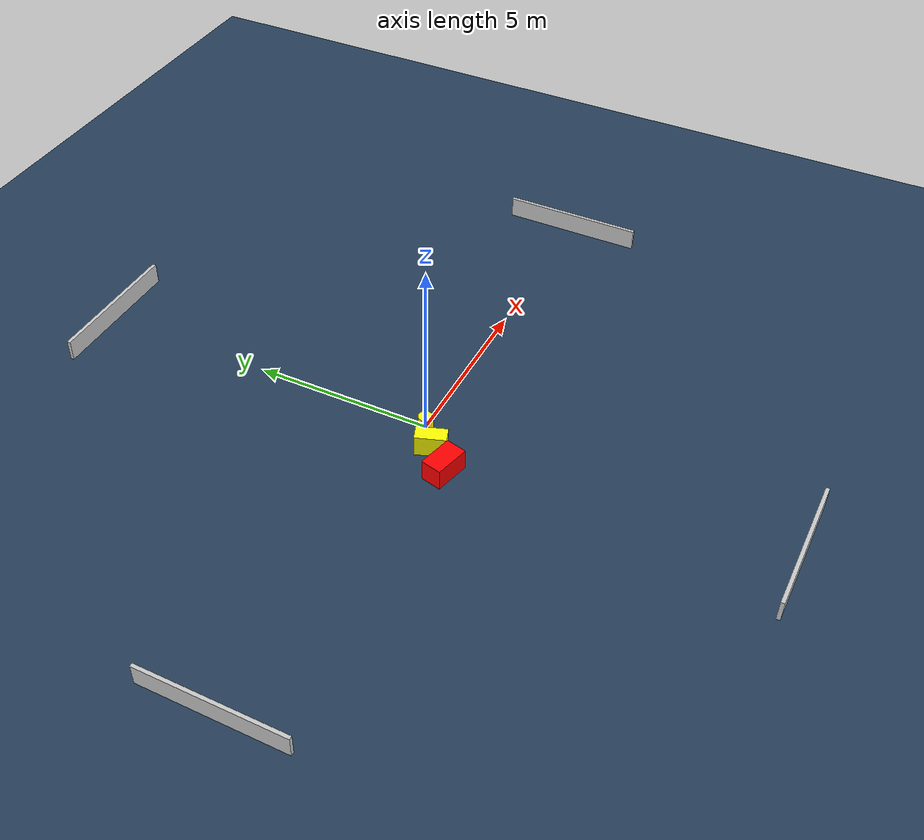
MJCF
<?xml version="1.0" ?>
<mujoco model="generated_environment">
  <option timestep="0.01" integrator="RK4" cone="elliptic"/>
  <default>
    <geom density="1"/>
  </default>
  <asset>
    <texture builtin="gradient" height="3072" name="skybox" rgb1="0.3 0.5 0.7" rgb2="0 0 0" type="skybox" width="512"/>
    <texture builtin="checker" height="300" name="groundplane" rgb1="0.2 0.3 0.4" rgb2="0.1 0.2 0.3" type="2d" width="300"/>
    <material name="groundplane" reflectance="0.2" texrepeat="5 5" texture="groundplane"/>
  </asset>
  <worldbody>
    <light dir="0 0 -1" directional="true" pos="0 0 1.5"/>
    <geom condim="3" friction="0.5 0.005 0.001" material="groundplane" name="floor" pos="0 0 0" size="0 0 0.05" type="plane"/>
    <body name="walls">
      <geom name="wall_1" condim="4" pos="-10.0 0.0 0.3" rgba="0.800000011920929 0.800000011920929 0.800000011920929 1.0" size="0.05 2.0 0.3" type="box"/>
      <geom name="wall_2" condim="4" pos="10.0 0.0 0.3" rgba="0.800000011920929 0.800000011920929 0.800000011920929 1.0" size="0.05 2.0 0.3" type="box"/>
      <geom name="wall_3" condim="4" pos="0.0 -10.0 0.3" rgba="0.800000011920929 0.800000011920929 0.800000011920929 1.0" size="2.0 0.05 0.3" type="box"/>
      <geom name="wall_4" condim="4" pos="0.0 10.0 0.3" rgba="0.800000011920929 0.800000011920929 0.800000011920929 1.0" size="2.0 0.05 0.3" type="box"/>
    </body>
    <body name="robot">
      <joint name="joint_x" type="slide" pos="0 0 0" axis="1 0 0"/>
      <joint name="joint_y" type="slide" pos="0 0 0" axis="0 1 0"/>
      <geom name="robot" type="cylinder" pos="0.0 0.0 0.2" size="0.2 0.2 0.0" mass="5.0" friction="1.0 0.005 0.0001" condim="4" rgba="1.0 1.0 0.0 1.0"/>
    </body>
    <body name="obstacle_1_movable">
      <geom name="obstacle_1_movable" condim="4" pos="-0.6913772678004224 -0.5073645262862921 0.3" euler="0 0 109.7140929666595" friction="0.0 0.005 0.001" rgba="1.0 1.0 0.0 1.0" size="0.42420510616301543 0.21603494929990968 0.3" type="box" mass="0.1"/>
      <joint type="free"/>
    </body>
    <body name="obstacle_2_static">
      <geom name="obstacle_2_static" condim="4" pos="-1.2838799194668038 -1.156492283098257 0.3" euler="0 0 255.8962107926933" friction="0.0 0.005 0.001" rgba="1.0 0.0 0.0 1.0" size="0.2945211226544395 0.49875124695584755 0.3" type="box"/>
    </body>
  </worldbody>
  <actuator>
    <motor name="actuator_x" joint="joint_x" gear="1" ctrlrange="-1 1"/>
    <motor name="actuator_y" joint="joint_y" gear="1" ctrlrange="-1 1"/>
  </actuator>
</mujoco>
